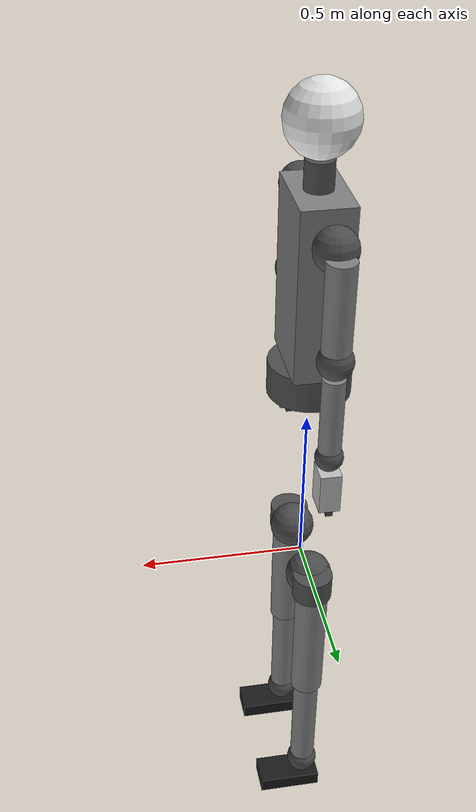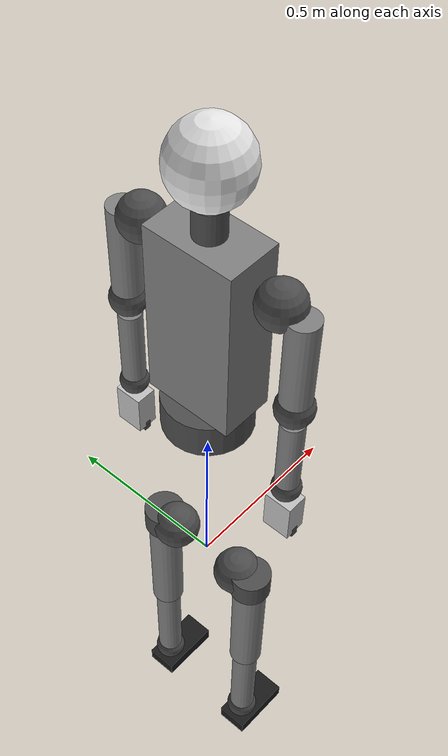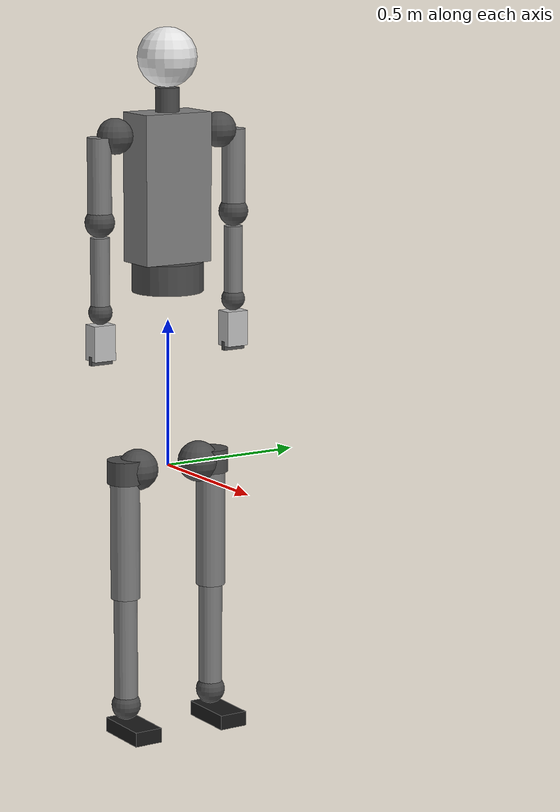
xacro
<?xml version="1.0"?>
<robot xmlns:xacro="http://www.ros.org/wiki/xacro" name="humanoid">

  <!-- Include macros -->
  <xacro:include filename="$(find humanoid_description)/urdf/materials.xacro"/>
  <xacro:include filename="$(find humanoid_description)/urdf/common_properties.xacro"/>
  <xacro:include filename="$(find humanoid_description)/urdf/torso.urdf.xacro"/>
  <xacro:include filename="$(find humanoid_description)/urdf/head.urdf.xacro"/>
  <xacro:include filename="$(find humanoid_description)/urdf/arm.urdf.xacro"/>
  <xacro:include filename="$(find humanoid_description)/urdf/leg.urdf.xacro"/>
  <xacro:include filename="$(find humanoid_description)/urdf/sensors.urdf.xacro"/>

  <!-- Parameters -->
  <xacro:arg name="use_sim" default="true"/>
  <xacro:arg name="use_fake_hardware" default="false"/>
  <xacro:arg name="use_gazebo" default="true"/>

  <xacro:property name="use_sim" value="$(arg use_sim)"/>
  <xacro:property name="use_fake_hardware" value="$(arg use_fake_hardware)"/>
  <xacro:property name="use_gazebo" value="$(arg use_gazebo)"/>

  <!-- Base link (floating base for humanoid) -->
  <link name="base_link">
    <visual>
      <geometry>
        <box size="0.001 0.001 0.001"/>
      </geometry>
    </visual>
  </link>

  <!-- Torso -->
  <xacro:torso parent="base_link"/>

  <!-- Head -->
  <xacro:head parent="torso_link"/>

  <!-- Arms -->
  <xacro:arm prefix="left" parent="torso_link" reflect="1"/>
  <xacro:arm prefix="right" parent="torso_link" reflect="-1"/>

  <!-- Legs -->
  <xacro:leg prefix="left" parent="base_link" reflect="1"/>
  <xacro:leg prefix="right" parent="base_link" reflect="-1"/>

  <!-- Sensors -->
  <xacro:imu_sensor parent="torso_link"/>
  <xacro:camera_sensor parent="head_link" name="head_camera"/>

  <!-- ROS2 Control -->
  <xacro:include filename="$(find humanoid_description)/urdf/ros2_control.urdf.xacro"/>
  <xacro:humanoid_ros2_control
    use_sim="${use_sim}"
    use_fake_hardware="${use_fake_hardware}"/>

  <!-- Gazebo -->
  <xacro:if value="${use_gazebo}">
    <xacro:include filename="$(find humanoid_description)/urdf/gazebo.urdf.xacro"/>
    <xacro:humanoid_gazebo/>
  </xacro:if>

</robot>

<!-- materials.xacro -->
<robot xmlns:xacro="http://www.ros.org/wiki/xacro">

  <!-- Material definitions -->
  <material name="black">
    <color rgba="0.1 0.1 0.1 1.0"/>
  </material>

  <material name="white">
    <color rgba="0.9 0.9 0.9 1.0"/>
  </material>

  <material name="grey">
    <color rgba="0.5 0.5 0.5 1.0"/>
  </material>

  <material name="red">
    <color rgba="0.8 0.0 0.0 1.0"/>
  </material>

  <material name="blue">
    <color rgba="0.0 0.3 0.8 1.0"/>
  </material>

  <material name="silver">
    <color rgba="0.75 0.75 0.75 1.0"/>
  </material>

  <material name="dark_grey">
    <color rgba="0.3 0.3 0.3 1.0"/>
  </material>

</robot>

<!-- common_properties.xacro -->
<robot xmlns:xacro="http://www.ros.org/wiki/xacro">

  <!-- Common inertial properties -->
  <xacro:macro name="cylinder_inertia" params="mass radius length">
    <inertial>
      <mass value="${mass}"/>
      <inertia
        ixx="${mass * (3 * radius * radius + length * length) / 12}"
        ixy="0.0"
        ixz="0.0"
        iyy="${mass * (3 * radius * radius + length * length) / 12}"
        iyz="0.0"
        izz="${mass * radius * radius / 2}"/>
    </inertial>
  </xacro:macro>

  <xacro:macro name="box_inertia" params="mass x y z">
    <inertial>
      <mass value="${mass}"/>
      <inertia
        ixx="${mass * (y*y + z*z) / 12}"
        ixy="0.0"
        ixz="0.0"
        iyy="${mass * (x*x + z*z) / 12}"
        iyz="0.0"
        izz="${mass * (x*x + y*y) / 12}"/>
    </inertial>
  </xacro:macro>

  <xacro:macro name="sphere_inertia" params="mass radius">
    <inertial>
      <mass value="${mass}"/>
      <inertia
        ixx="${2 * mass * radius * radius / 5}"
        ixy="0.0"
        ixz="0.0"
        iyy="${2 * mass * radius * radius / 5}"
        iyz="0.0"
        izz="${2 * mass * radius * radius / 5}"/>
    </inertial>
  </xacro:macro>

  <!-- Common collision properties -->
  <xacro:macro name="default_collision" params="*geometry">
    <collision>
      <xacro:insert_block name="geometry"/>
    </collision>
  </xacro:macro>

</robot>

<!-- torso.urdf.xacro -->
<robot xmlns:xacro="http://www.ros.org/wiki/xacro">

  <xacro:macro name="torso" params="parent">

    <!-- Torso properties -->
    <xacro:property name="torso_length" value="0.5"/>
    <xacro:property name="torso_width" value="0.25"/>
    <xacro:property name="torso_depth" value="0.15"/>
    <xacro:property name="torso_mass" value="15.0"/>

    <!-- Torso joint (fixed to base for now, could be floating) -->
    <joint name="torso_joint" type="fixed">
      <parent link="${parent}"/>
      <child link="torso_link"/>
      <origin xyz="0 0 0.95" rpy="0 0 0"/>
    </joint>

    <!-- Torso link -->
    <link name="torso_link">
      <visual>
        <geometry>
          <box size="${torso_depth} ${torso_width} ${torso_length}"/>
        </geometry>
        <material name="grey"/>
      </visual>
      <collision>
        <geometry>
          <box size="${torso_depth} ${torso_width} ${torso_length}"/>
        </geometry>
      </collision>
      <xacro:box_inertia
        mass="${torso_mass}"
        x="${torso_depth}"
        y="${torso_width}"
        z="${torso_length}"/>
    </link>

    <!-- Waist (connection to pelvis) -->
    <joint name="waist_pitch" type="revolute">
      <parent link="torso_link"/>
      <child link="waist_link"/>
      <origin xyz="0 0 ${-torso_length/2 - 0.05}" rpy="0 0 0"/>
      <axis xyz="0 1 0"/>
      <limit effort="100" lower="-0.5" upper="0.5" velocity="2.0"/>
      <dynamics damping="0.7" friction="0.0"/>
    </joint>

    <link name="waist_link">
      <visual>
        <geometry>
          <cylinder radius="0.12" length="0.1"/>
        </geometry>
        <material name="dark_grey"/>
      </visual>
      <collision>
        <geometry>
          <cylinder radius="0.12" length="0.1"/>
        </geometry>
      </collision>
      <xacro:cylinder_inertia mass="3.0" radius="0.12" length="0.1"/>
    </link>

  </xacro:macro>

</robot>

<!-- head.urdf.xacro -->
<robot xmlns:xacro="http://www.ros.org/wiki/xacro">

  <xacro:macro name="head" params="parent">

    <!-- Head properties -->
    <xacro:property name="head_radius" value="0.10"/>
    <xacro:property name="neck_length" value="0.08"/>
    <xacro:property name="head_mass" value="2.0"/>
    <xacro:property name="neck_mass" value="0.5"/>

    <!-- Neck pitch joint -->
    <joint name="neck_pitch" type="revolute">
      <parent link="${parent}"/>
      <child link="neck_link"/>
      <origin xyz="0 0 ${0.5/2 + 0.04}" rpy="0 0 0"/>
      <axis xyz="0 1 0"/>
      <limit effort="30" lower="-0.785" upper="0.785" velocity="2.0"/>
      <dynamics damping="0.5" friction="0.0"/>
    </joint>

    <link name="neck_link">
      <visual>
        <geometry>
          <cylinder radius="0.04" length="${neck_length}"/>
        </geometry>
        <material name="dark_grey"/>
      </visual>
      <collision>
        <geometry>
          <cylinder radius="0.04" length="${neck_length}"/>
        </geometry>
      </collision>
      <xacro:cylinder_inertia mass="${neck_mass}" radius="0.04" length="${neck_length}"/>
    </link>

    <!-- Neck yaw joint -->
    <joint name="neck_yaw" type="revolute">
      <parent link="neck_link"/>
      <child link="head_link"/>
      <origin xyz="0 0 ${neck_length/2 + head_radius}" rpy="0 0 0"/>
      <axis xyz="0 0 1"/>
      <limit effort="30" lower="-1.57" upper="1.57" velocity="2.0"/>
      <dynamics damping="0.5" friction="0.0"/>
    </joint>

    <!-- Head link -->
    <link name="head_link">
      <visual>
        <geometry>
          <sphere radius="${head_radius}"/>
        </geometry>
        <material name="white"/>
      </visual>
      <collision>
        <geometry>
          <sphere radius="${head_radius}"/>
        </geometry>
      </collision>
      <xacro:sphere_inertia mass="${head_mass}" radius="${head_radius}"/>
    </link>

  </xacro:macro>

</robot>

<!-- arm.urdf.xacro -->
<robot xmlns:xacro="http://www.ros.org/wiki/xacro">

  <xacro:macro name="arm" params="prefix parent reflect">

    <!-- Arm properties -->
    <xacro:property name="shoulder_offset_y" value="0.20"/>
    <xacro:property name="shoulder_offset_z" value="0.18"/>
    <xacro:property name="upper_arm_length" value="0.28"/>
    <xacro:property name="forearm_length" value="0.25"/>
    <xacro:property name="hand_length" value="0.12"/>
    <xacro:property name="arm_radius" value="0.04"/>

    <!-- Shoulder pitch joint -->
    <joint name="${prefix}_shoulder_pitch" type="revolute">
      <parent link="${parent}"/>
      <child link="${prefix}_shoulder_link"/>
      <origin xyz="0 ${reflect * shoulder_offset_y} ${shoulder_offset_z}" rpy="0 0 0"/>
      <axis xyz="0 1 0"/>
      <limit effort="50" lower="-2.8" upper="2.8" velocity="3.0"/>
      <dynamics damping="0.7" friction="0.0"/>
    </joint>

    <link name="${prefix}_shoulder_link">
      <visual>
        <geometry>
          <sphere radius="0.06"/>
        </geometry>
        <material name="dark_grey"/>
      </visual>
      <collision>
        <geometry>
          <sphere radius="0.06"/>
        </geometry>
      </collision>
      <xacro:sphere_inertia mass="1.0" radius="0.06"/>
    </link>

    <!-- Shoulder roll joint -->
    <joint name="${prefix}_shoulder_roll" type="revolute">
      <parent link="${prefix}_shoulder_link"/>
      <child link="${prefix}_upper_arm_link"/>
      <origin xyz="0 ${reflect * 0.06} 0" rpy="0 0 0"/>
      <axis xyz="1 0 0"/>
      <limit effort="50" lower="-1.57" upper="3.14" velocity="3.0"/>
      <dynamics damping="0.7" friction="0.0"/>
    </joint>

    <!-- Upper arm -->
    <link name="${prefix}_upper_arm_link">
      <visual>
        <origin xyz="0 0 ${-upper_arm_length/2}" rpy="0 0 0"/>
        <geometry>
          <cylinder radius="${arm_radius}" length="${upper_arm_length}"/>
        </geometry>
        <material name="grey"/>
      </visual>
      <collision>
        <origin xyz="0 0 ${-upper_arm_length/2}" rpy="0 0 0"/>
        <geometry>
          <cylinder radius="${arm_radius}" length="${upper_arm_length}"/>
        </geometry>
      </collision>
      <xacro:cylinder_inertia mass="2.0" radius="${arm_radius}" length="${upper_arm_length}"/>
    </link>

    <!-- Shoulder yaw joint -->
    <joint name="${prefix}_shoulder_yaw" type="revolute">
      <parent link="${prefix}_upper_arm_link"/>
      <child link="${prefix}_elbow_link"/>
      <origin xyz="0 0 ${-upper_arm_length}" rpy="0 0 0"/>
      <axis xyz="0 0 1"/>
      <limit effort="40" lower="-1.57" upper="1.57" velocity="3.0"/>
      <dynamics damping="0.5" friction="0.0"/>
    </joint>

    <link name="${prefix}_elbow_link">
      <visual>
        <geometry>
          <sphere radius="0.05"/>
        </geometry>
        <material name="dark_grey"/>
      </visual>
      <collision>
        <geometry>
          <sphere radius="0.05"/>
        </geometry>
      </collision>
      <xacro:sphere_inertia mass="0.5" radius="0.05"/>
    </link>

    <!-- Elbow pitch joint -->
    <joint name="${prefix}_elbow_pitch" type="revolute">
      <parent link="${prefix}_elbow_link"/>
      <child link="${prefix}_forearm_link"/>
      <origin xyz="0 0 -0.05" rpy="0 0 0"/>
      <axis xyz="0 1 0"/>
      <limit effort="40" lower="0" upper="2.5" velocity="3.0"/>
      <dynamics damping="0.5" friction="0.0"/>
    </joint>

    <!-- Forearm -->
    <link name="${prefix}_forearm_link">
      <visual>
        <origin xyz="0 0 ${-forearm_length/2}" rpy="0 0 0"/>
        <geometry>
          <cylinder radius="${arm_radius * 0.8}" length="${forearm_length}"/>
        </geometry>
        <material name="grey"/>
      </visual>
      <collision>
        <origin xyz="0 0 ${-forearm_length/2}" rpy="0 0 0"/>
        <geometry>
          <cylinder radius="${arm_radius * 0.8}" length="${forearm_length}"/>
        </geometry>
      </collision>
      <xacro:cylinder_inertia mass="1.5" radius="${arm_radius * 0.8}" length="${forearm_length}"/>
    </link>

    <!-- Wrist pitch joint -->
    <joint name="${prefix}_wrist_pitch" type="revolute">
      <parent link="${prefix}_forearm_link"/>
      <child link="${prefix}_wrist_link"/>
      <origin xyz="0 0 ${-forearm_length}" rpy="0 0 0"/>
      <axis xyz="0 1 0"/>
      <limit effort="20" lower="-1.57" upper="1.57" velocity="3.0"/>
      <dynamics damping="0.3" friction="0.0"/>
    </joint>

    <link name="${prefix}_wrist_link">
      <visual>
        <geometry>
          <sphere radius="0.04"/>
        </geometry>
        <material name="dark_grey"/>
      </visual>
      <collision>
        <geometry>
          <sphere radius="0.04"/>
        </geometry>
      </collision>
      <xacro:sphere_inertia mass="0.3" radius="0.04"/>
    </link>

    <!-- Wrist roll joint -->
    <joint name="${prefix}_wrist_roll" type="revolute">
      <parent link="${prefix}_wrist_link"/>
      <child link="${prefix}_hand_link"/>
      <origin xyz="0 0 -0.04" rpy="0 0 0"/>
      <axis xyz="0 0 1"/>
      <limit effort="20" lower="-1.57" upper="1.57" velocity="3.0"/>
      <dynamics damping="0.3" friction="0.0"/>
    </joint>

    <!-- Hand/gripper -->
    <link name="${prefix}_hand_link">
      <visual>
        <origin xyz="0 0 ${-hand_length/2}" rpy="0 0 0"/>
        <geometry>
          <box size="0.06 0.08 ${hand_length}"/>
        </geometry>
        <material name="silver"/>
      </visual>
      <collision>
        <origin xyz="0 0 ${-hand_length/2}" rpy="0 0 0"/>
        <geometry>
          <box size="0.06 0.08 ${hand_length}"/>
        </geometry>
      </collision>
      <xacro:box_inertia mass="0.5" x="0.06" y="0.08" z="${hand_length}"/>
    </link>

    <!-- Gripper joint (simple 1-DOF gripper) -->
    <joint name="${prefix}_gripper" type="prismatic">
      <parent link="${prefix}_hand_link"/>
      <child link="${prefix}_gripper_link"/>
      <origin xyz="0 0 ${-hand_length}" rpy="0 0 0"/>
      <axis xyz="1 0 0"/>
      <limit effort="10" lower="0" upper="0.04" velocity="0.5"/>
      <dynamics damping="0.1" friction="0.0"/>
    </joint>

    <link name="${prefix}_gripper_link">
      <visual>
        <geometry>
          <box size="0.02 0.08 0.03"/>
        </geometry>
        <material name="dark_grey"/>
      </visual>
      <collision>
        <geometry>
          <box size="0.02 0.08 0.03"/>
        </geometry>
      </collision>
      <xacro:box_inertia mass="0.1" x="0.02" y="0.08" z="0.03"/>
    </link>

  </xacro:macro>

</robot>

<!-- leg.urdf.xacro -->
<robot xmlns:xacro="http://www.ros.org/wiki/xacro">

  <xacro:macro name="leg" params="prefix parent reflect">

    <!-- Leg properties -->
    <xacro:property name="hip_offset_y" value="0.12"/>
    <xacro:property name="thigh_length" value="0.40"/>
    <xacro:property name="shin_length" value="0.38"/>
    <xacro:property name="foot_length" value="0.20"/>
    <xacro:property name="foot_width" value="0.10"/>
    <xacro:property name="foot_height" value="0.05"/>
    <xacro:property name="leg_radius" value="0.05"/>

    <!-- Hip yaw joint -->
    <joint name="${prefix}_hip_yaw" type="revolute">
      <parent link="${parent}"/>
      <child link="${prefix}_hip_yaw_link"/>
      <origin xyz="0 ${reflect * hip_offset_y} 0" rpy="0 0 0"/>
      <axis xyz="0 0 1"/>
      <limit effort="80" lower="-0.5" upper="0.5" velocity="3.0"/>
      <dynamics damping="1.0" friction="0.0"/>
    </joint>

    <link name="${prefix}_hip_yaw_link">
      <visual>
        <geometry>
          <sphere radius="0.07"/>
        </geometry>
        <material name="dark_grey"/>
      </visual>
      <collision>
        <geometry>
          <sphere radius="0.07"/>
        </geometry>
      </collision>
      <xacro:sphere_inertia mass="1.5" radius="0.07"/>
    </link>

    <!-- Hip roll joint -->
    <joint name="${prefix}_hip_roll" type="revolute">
      <parent link="${prefix}_hip_yaw_link"/>
      <child link="${prefix}_hip_roll_link"/>
      <origin xyz="0 ${reflect * 0.05} 0" rpy="0 0 0"/>
      <axis xyz="1 0 0"/>
      <limit effort="100" lower="-0.5" upper="2.0" velocity="3.0"/>
      <dynamics damping="1.0" friction="0.0"/>
    </joint>

    <link name="${prefix}_hip_roll_link">
      <visual>
        <geometry>
          <cylinder radius="0.06" length="0.08"/>
        </geometry>
        <material name="dark_grey"/>
      </visual>
      <collision>
        <geometry>
          <cylinder radius="0.06" length="0.08"/>
        </geometry>
      </collision>
      <xacro:cylinder_inertia mass="2.0" radius="0.06" length="0.08"/>
    </link>

    <!-- Hip pitch joint -->
    <joint name="${prefix}_hip_pitch" type="revolute">
      <parent link="${prefix}_hip_roll_link"/>
      <child link="${prefix}_thigh_link"/>
      <origin xyz="0 0 -0.04" rpy="0 0 0"/>
      <axis xyz="0 1 0"/>
      <limit effort="150" lower="-1.57" upper="2.5" velocity="3.0"/>
      <dynamics damping="1.0" friction="0.0"/>
    </joint>

    <!-- Thigh -->
    <link name="${prefix}_thigh_link">
      <visual>
        <origin xyz="0 0 ${-thigh_length/2}" rpy="0 0 0"/>
        <geometry>
          <cylinder radius="${leg_radius}" length="${thigh_length}"/>
        </geometry>
        <material name="grey"/>
      </visual>
      <collision>
        <origin xyz="0 0 ${-thigh_length/2}" rpy="0 0 0"/>
        <geometry>
          <cylinder radius="${leg_radius}" length="${thigh_length}"/>
        </geometry>
      </collision>
      <xacro:cylinder_inertia mass="5.0" radius="${leg_radius}" length="${thigh_length}"/>
    </link>

    <!-- Knee pitch joint -->
    <joint name="${prefix}_knee_pitch" type="revolute">
      <parent link="${prefix}_thigh_link"/>
      <child link="${prefix}_shin_link"/>
      <origin xyz="0 0 ${-thigh_length}" rpy="0 0 0"/>
      <axis xyz="0 1 0"/>
      <limit effort="150" lower="-2.5" upper="0" velocity="3.0"/>
      <dynamics damping="1.0" friction="0.0"/>
    </joint>

    <!-- Shin -->
    <link name="${prefix}_shin_link">
      <visual>
        <origin xyz="0 0 ${-shin_length/2}" rpy="0 0 0"/>
        <geometry>
          <cylinder radius="${leg_radius * 0.8}" length="${shin_length}"/>
        </geometry>
        <material name="grey"/>
      </visual>
      <collision>
        <origin xyz="0 0 ${-shin_length/2}" rpy="0 0 0"/>
        <geometry>
          <cylinder radius="${leg_radius * 0.8}" length="${shin_length}"/>
        </geometry>
      </collision>
      <xacro:cylinder_inertia mass="4.0" radius="${leg_radius * 0.8}" length="${shin_length}"/>
    </link>

    <!-- Ankle pitch joint -->
    <joint name="${prefix}_ankle_pitch" type="revolute">
      <parent link="${prefix}_shin_link"/>
      <child link="${prefix}_ankle_link"/>
      <origin xyz="0 0 ${-shin_length}" rpy="0 0 0"/>
      <axis xyz="0 1 0"/>
      <limit effort="100" lower="-1.0" upper="1.0" velocity="3.0"/>
      <dynamics damping="0.8" friction="0.0"/>
    </joint>

    <link name="${prefix}_ankle_link">
      <visual>
        <geometry>
          <sphere radius="0.05"/>
        </geometry>
        <material name="dark_grey"/>
      </visual>
      <collision>
        <geometry>
          <sphere radius="0.05"/>
        </geometry>
      </collision>
      <xacro:sphere_inertia mass="0.8" radius="0.05"/>
    </link>

    <!-- Ankle roll joint -->
    <joint name="${prefix}_ankle_roll" type="revolute">
      <parent link="${prefix}_ankle_link"/>
      <child link="${prefix}_foot_link"/>
      <origin xyz="0 0 -0.05" rpy="0 0 0"/>
      <axis xyz="1 0 0"/>
      <limit effort="100" lower="-0.5" upper="0.5" velocity="3.0"/>
      <dynamics damping="0.8" friction="0.0"/>
    </joint>

    <!-- Foot -->
    <link name="${prefix}_foot_link">
      <visual>
        <origin xyz="${foot_length/4} 0 ${-foot_height/2}" rpy="0 0 0"/>
        <geometry>
          <box size="${foot_length} ${foot_width} ${foot_height}"/>
        </geometry>
        <material name="black"/>
      </visual>
      <collision>
        <origin xyz="${foot_length/4} 0 ${-foot_height/2}" rpy="0 0 0"/>
        <geometry>
          <box size="${foot_length} ${foot_width} ${foot_height}"/>
        </geometry>
      </collision>
      <xacro:box_inertia mass="1.5" x="${foot_length}" y="${foot_width}" z="${foot_height}"/>
    </link>

    <!-- Contact sensor frame at bottom of foot -->
    <joint name="${prefix}_foot_contact_joint" type="fixed">
      <parent link="${prefix}_foot_link"/>
      <child link="${prefix}_foot_contact"/>
      <origin xyz="${foot_length/4} 0 ${-foot_height}" rpy="0 0 0"/>
    </joint>

    <link name="${prefix}_foot_contact">
      <visual>
        <geometry>
          <sphere radius="0.01"/>
        </geometry>
        <material name="red"/>
      </visual>
    </link>

  </xacro:macro>

</robot>

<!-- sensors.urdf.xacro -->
<robot xmlns:xacro="http://www.ros.org/wiki/xacro">

  <!-- IMU Sensor Macro -->
  <xacro:macro name="imu_sensor" params="parent">
    <joint name="imu_joint" type="fixed">
      <parent link="${parent}"/>
      <child link="imu_link"/>
      <origin xyz="0 0 0" rpy="0 0 0"/>
    </joint>

    <link name="imu_link">
      <visual>
        <geometry>
          <box size="0.03 0.03 0.01"/>
        </geometry>
        <material name="blue"/>
      </visual>
      <collision>
        <geometry>
          <box size="0.03 0.03 0.01"/>
        </geometry>
      </collision>
      <xacro:box_inertia mass="0.05" x="0.03" y="0.03" z="0.01"/>
    </link>
  </xacro:macro>

  <!-- Camera Sensor Macro -->
  <xacro:macro name="camera_sensor" params="parent name">
    <joint name="${name}_joint" type="fixed">
      <parent link="${parent}"/>
      <child link="${name}_link"/>
      <origin xyz="0.08 0 0" rpy="0 0 0"/>
    </joint>

    <link name="${name}_link">
      <visual>
        <geometry>
          <box size="0.02 0.06 0.02"/>
        </geometry>
        <material name="black"/>
      </visual>
      <collision>
        <geometry>
          <box size="0.02 0.06 0.02"/>
        </geometry>
      </collision>
      <xacro:box_inertia mass="0.1" x="0.02" y="0.06" z="0.02"/>
    </link>

    <!-- Optical frame -->
    <joint name="${name}_optical_joint" type="fixed">
      <parent link="${name}_link"/>
      <child link="${name}_optical_frame"/>
      <origin xyz="0 0 0" rpy="${-pi/2} 0 ${-pi/2}"/>
    </joint>

    <link name="${name}_optical_frame"/>
  </xacro:macro>

  <!-- Lidar Sensor Macro (optional) -->
  <xacro:macro name="lidar_sensor" params="parent name">
    <joint name="${name}_joint" type="fixed">
      <parent link="${parent}"/>
      <child link="${name}_link"/>
      <origin xyz="0 0 0.05" rpy="0 0 0"/>
    </joint>

    <link name="${name}_link">
      <visual>
        <geometry>
          <cylinder radius="0.04" length="0.05"/>
        </geometry>
        <material name="black"/>
      </visual>
      <collision>
        <geometry>
          <cylinder radius="0.04" length="0.05"/>
        </geometry>
      </collision>
      <xacro:cylinder_inertia mass="0.2" radius="0.04" length="0.05"/>
    </link>
  </xacro:macro>

</robot>
